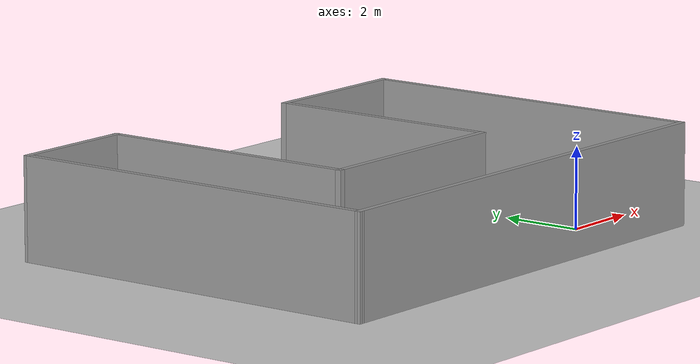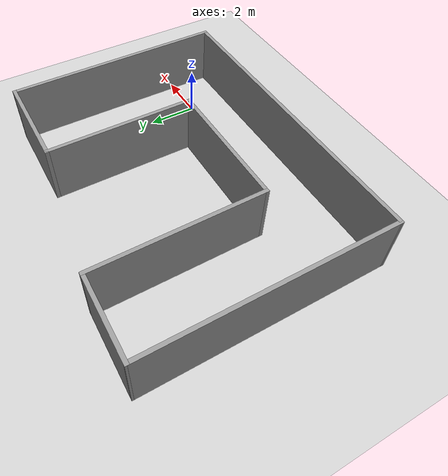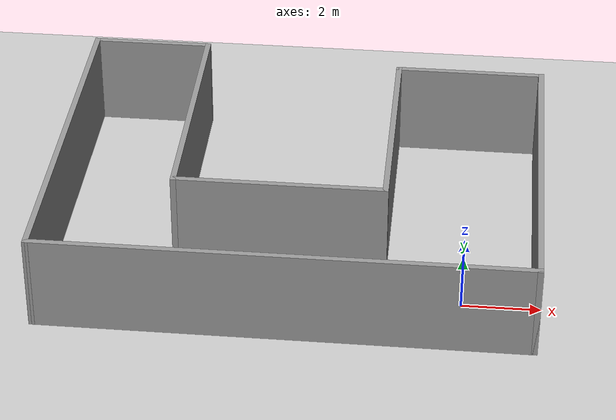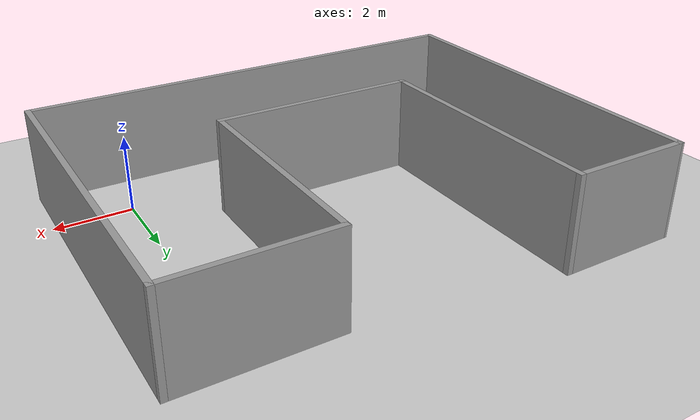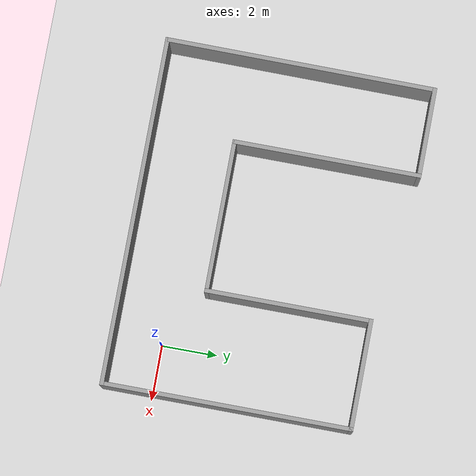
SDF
<sdf version="1.6">
 <world name="default">
  <light name="sun" type="directional">
   <pose>0 0 10 0 -0 0</pose>
   <diffuse>0.8 0.8 0.8 1</diffuse>
   <specular>0.2 0.2 0.2 1</specular>
   <attenuation>
    <range>1000</range>
    <constant>0.9</constant>
    <linear>0.01</linear>
    <quadratic>0.001</quadratic>
   </attenuation>
   <direction>-0.5 0.1 -0.9</direction>
  </light>
  <model name="ground_plane">
   <static>1</static>
   <link name="link">
    <collision name="collision">
     <geometry><plane><normal>0 0 1</normal><size>100 100</size></plane></geometry>
     <surface><friction><ode><mu>100</mu><mu2>50</mu2></ode></friction></surface>
    </collision>
    <visual name="visual">
     <cast_shadows>0</cast_shadows>
     <geometry><plane><normal>0 0 1</normal><size>100 100</size></plane></geometry>
     <material>
      <script><uri>file://media/materials/scripts/gazebo.material</uri><name>Gazebo/Grey</name></script>
     </material>
    </visual>
   </link>
  </model>
  <gravity>0 0 -9.8</gravity>
  <magnetic_field>6e-06 2.3e-05 -4.2e-05</magnetic_field>
  <atmosphere type="adiabatic"/>
  <physics name="default_physics" default="0" type="ode">
   <max_step_size>0.001</max_step_size>
   <real_time_factor>1</real_time_factor>
   <real_time_update_rate>1000</real_time_update_rate>
  </physics>
  <scene><ambient>0.4 0.4 0.4 1</ambient><background>0.7 0.7 0.7 1</background><shadows>1</shadows></scene>
  <spherical_coordinates>
   <surface_model>EARTH_WGS84</surface_model>
   <latitude_deg>0</latitude_deg>
   <longitude_deg>0</longitude_deg>
   <elevation>0</elevation>
   <heading_deg>0</heading_deg>
  </spherical_coordinates>
  <model name="Untitled">
   <pose>-4.35011 3.09153 0 0 -0 0</pose>
   <link name="Wall_15">
    <collision name="Wall_15_Collision">
     <geometry><box><size>12.5 0.15 2.5</size></box></geometry>
     <pose>0 0 1.25 0 -0 0</pose>
    </collision>
    <visual name="Wall_15_Visual">
     <pose>0 0 1.25 0 -0 0</pose>
     <geometry><box><size>12.5 0.15 2.5</size></box></geometry>
     <material>
      <script><uri>file://media/materials/scripts/gazebo.material</uri><name>Gazebo/Grey</name></script>
      <ambient>1 1 1 1</ambient>
     </material>
     <meta><layer>0</layer></meta>
    </visual>
    <pose>0.000195 -4.8 0 0 -0 0</pose>
   </link>
   <link name="Wall_17">
    <collision name="Wall_17_Collision">
     <geometry><box><size>9 0.15 2.5</size></box></geometry>
     <pose>0 0 1.25 0 -0 0</pose>
    </collision>
    <visual name="Wall_17_Visual">
     <pose>0 0 1.25 0 -0 0</pose>
     <geometry><box><size>9 0.15 2.5</size></box></geometry>
     <material>
      <script><uri>file://media/materials/scripts/gazebo.material</uri><name>Gazebo/Grey</name></script>
      <ambient>1 1 1 1</ambient>
     </material>
     <meta><layer>0</layer></meta>
    </visual>
    <pose>6.1752 -0.375 0 0 -0 1.5708</pose>
   </link>
   <link name="Wall_18">
    <collision name="Wall_18_Collision">
     <geometry><box><size>4 0.15 2.5</size></box></geometry>
     <pose>0 0 1.25 0 -0 0</pose>
    </collision>
    <visual name="Wall_18_Visual">
     <pose>0 0 1.25 0 -0 0</pose>
     <geometry><box><size>4 0.15 2.5</size></box></geometry>
     <material>
      <script><uri>file://media/materials/scripts/gazebo.material</uri><name>Gazebo/Grey</name></script>
      <ambient>1 1 1 1</ambient>
     </material>
     <meta><layer>0</layer></meta>
    </visual>
    <pose>4.25019 4.05 0 0 -0 3.14159</pose>
   </link>
   <link name="Wall_19">
    <collision name="Wall_19_Collision">
     <geometry><box><size>6 0.15 2.5</size></box></geometry>
     <pose>0 0 1.25 0 -0 0</pose>
    </collision>
    <visual name="Wall_19_Visual">
     <pose>0 0 1.25 0 -0 0</pose>
     <geometry><box><size>6 0.15 2.5</size></box></geometry>
     <material>
      <script><uri>file://media/materials/scripts/gazebo.material</uri><name>Gazebo/Grey</name></script>
      <ambient>1 1 1 1</ambient>
     </material>
     <meta><layer>0</layer></meta>
    </visual>
    <pose>2.32519 1.125 0 0 0 -1.5708</pose>
   </link>
   <link name="Wall_20">
    <collision name="Wall_20_Collision">
     <geometry><box><size>5.5 0.15 2.5</size></box></geometry>
     <pose>0 0 1.25 0 -0 0</pose>
    </collision>
    <visual name="Wall_20_Visual">
     <pose>0 0 1.25 0 -0 0</pose>
     <geometry><box><size>5.5 0.15 2.5</size></box></geometry>
     <material>
      <script><uri>file://media/materials/scripts/gazebo.material</uri><name>Gazebo/Grey</name></script>
      <ambient>1 1 1 1</ambient>
     </material>
     <meta><layer>0</layer></meta>
    </visual>
    <pose>-0.349805 -1.8 0 0 -0 3.14159</pose>
   </link>
   <link name="Wall_21">
    <collision name="Wall_21_Collision">
     <geometry><box><size>6.75 0.15 2.5</size></box></geometry>
     <pose>0 0 1.25 0 -0 0</pose>
    </collision>
    <visual name="Wall_21_Visual">
     <pose>0 0 1.25 0 -0 0</pose>
     <geometry><box><size>6.75 0.15 2.5</size></box></geometry>
     <material>
      <script><uri>file://media/materials/scripts/gazebo.material</uri><name>Gazebo/Grey</name></script>
      <ambient>1 1 1 1</ambient>
     </material>
     <meta><layer>0</layer></meta>
    </visual>
    <pose>-3.02481 1.5 0 0 -0 1.5708</pose>
   </link>
   <link name="Wall_22">
    <collision name="Wall_22_Collision">
     <geometry><box><size>3.25 0.15 2.5</size></box></geometry>
     <pose>0 0 1.25 0 -0 0</pose>
    </collision>
    <visual name="Wall_22_Visual">
     <pose>0 0 1.25 0 -0 0</pose>
     <geometry><box><size>3.25 0.15 2.5</size></box></geometry>
     <material>
      <script><uri>file://media/materials/scripts/gazebo.material</uri><name>Gazebo/Grey</name></script>
      <ambient>1 1 1 1</ambient>
     </material>
     <meta><layer>0</layer></meta>
    </visual>
    <pose>-4.5748 4.8 0 0 -0 3.14159</pose>
   </link>
   <link name="Wall_23">
    <collision name="Wall_23_Collision">
     <geometry><box><size>9.75013 0.15 2.5</size></box></geometry>
     <pose>0 0 1.25 0 -0 0</pose>
    </collision>
    <visual name="Wall_23_Visual">
     <pose>0 0 1.25 0 -0 0</pose>
     <geometry><box><size>9.75013 0.15 2.5</size></box></geometry>
     <material>
      <script><uri>file://media/materials/scripts/gazebo.material</uri><name>Gazebo/Grey</name></script>
      <ambient>1 1 1 1</ambient>
     </material>
     <meta><layer>0</layer></meta>
    </visual>
    <pose>-6.1498 0 0 0 0 -1.57601</pose>
   </link>
   <static>1</static>
  </model>
  <plugin filename="libcollision_map_creator.so" name="collision_map_creator"/>
 </world>
</sdf>
